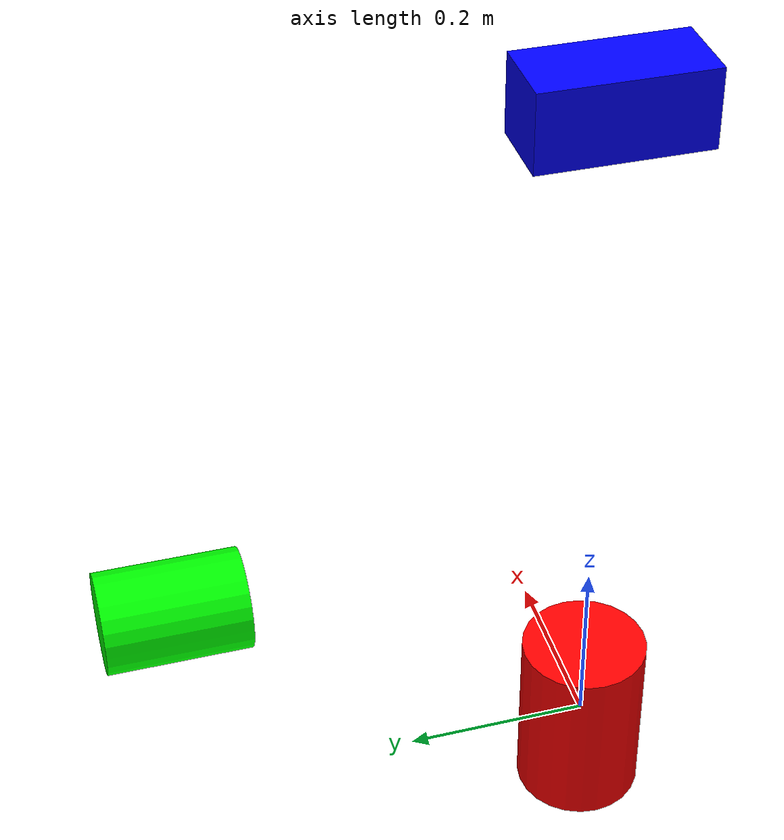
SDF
<?xml version="1.0" ?>
<sdf version="1.9">
  <model name="colored_cylinders">
    <static>true</static>

    <!-- Red cylinder -->
    <link name="red_cylinder">
      <pose>0 0 0 0 0 0</pose>
      <inertial>
        <mass>0.1</mass>
        <inertia>
          <ixx>1e-4</ixx><iyy>1e-4</iyy><izz>1e-4</izz>
          <ixy>0</ixy><ixz>0</ixz><iyz>0</iyz>
        </inertia>
      </inertial>
      <visual name="visual">
        <geometry>
          <cylinder><radius>0.07</radius><length>0.2</length></cylinder>
        </geometry>
        <material>
            <ambient>1 0 0 1</ambient>
            <diffuse>1 0 0 1</diffuse>
          </material>
      </visual>
    </link>

    <!-- Green cylinder (horizontal) -->
    <link name="green_cylinder">
      <pose>0.5 0.4 -0.2 0 1.5708 1.5708</pose>
      <inertial>
        <mass>0.1</mass>
        <inertia>
          <ixx>1e-4</ixx><iyy>1e-4</iyy><izz>1e-4</izz>
          <ixy>0</ixy><ixz>0</ixz><iyz>0</iyz>
        </inertia>
      </inertial>
      <visual name="visual">
        <geometry>
          <cylinder><radius>0.07</radius><length>0.2</length></cylinder>
        </geometry>
        <material>
            <ambient>0 1 0 1</ambient>
            <diffuse>0 1 0 1</diffuse>
          </material>
      </visual>
    </link>

    <!-- Blue box -->
    <link name="blue_box">
      <pose>1.0 -0.4 0.2 0 1.5708 1.5708</pose>
      <inertial>
        <mass>0.1</mass>
        <inertia>
          <ixx>1e-4</ixx><iyy>1e-4</iyy><izz>1e-4</izz>
          <ixy>0</ixy><ixz>0</ixz><iyz>0</iyz>
        </inertia>
      </inertial>
      <visual name="visual">
        <geometry>
          <box><size>0.14 0.14 0.3</size></box>
        </geometry>
        <material>
            <ambient>0 0 1 1</ambient>
            <diffuse>0 0 1 1</diffuse>
          </material>
      </visual>
    </link>

  </model>
</sdf>
